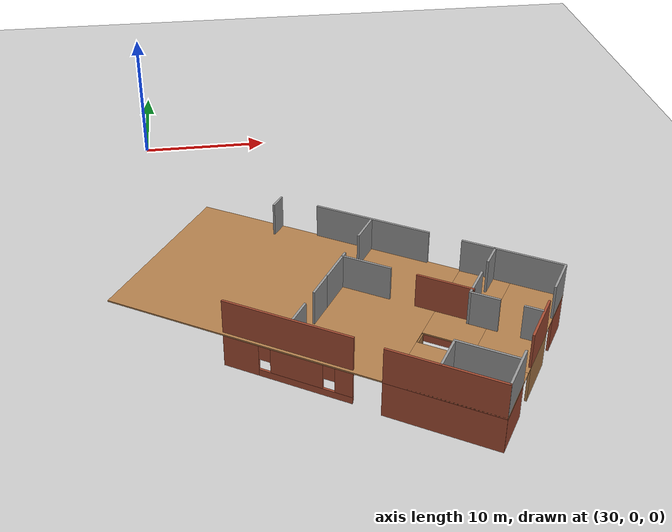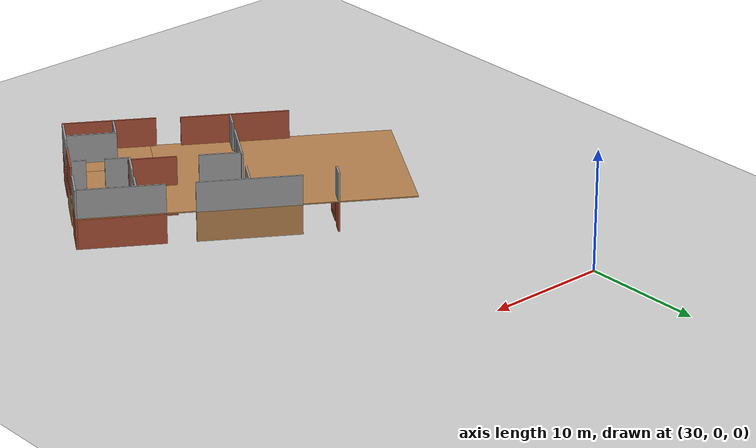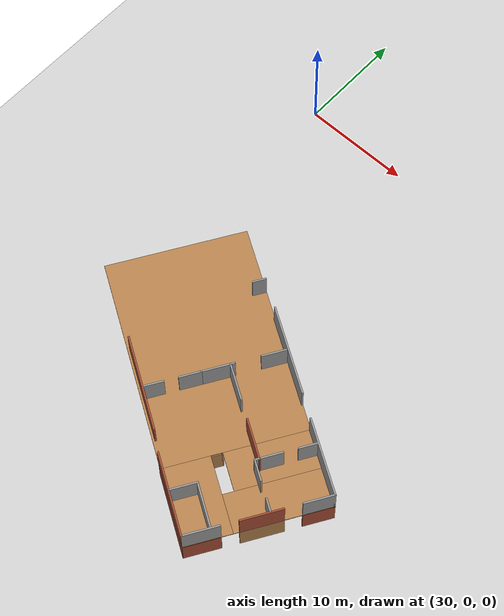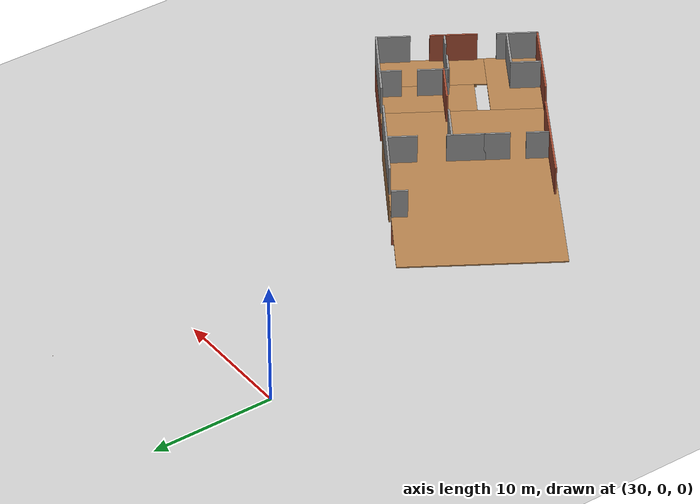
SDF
<sdf version="1.7">
 <world name="default">
  <model name="ground_plane">
   <static>1</static>
   <link name="link">
    <collision name="collision">
     <geometry><plane><normal>0 0 1</normal><size>100 100</size></plane></geometry>
     <surface><friction><ode><mu>100</mu><mu2>50</mu2></ode></friction></surface>
    </collision>
    <visual name="visual">
     <cast_shadows>0</cast_shadows>
     <geometry><plane><normal>0 0 1</normal><size>100 100</size></plane></geometry>
     <material>
      <script><uri>file://media/materials/scripts/gazebo.material</uri><name>Gazebo/Grey</name></script>
     </material>
    </visual>
   </link>
  </model>
  <model name="new_world">
   <pose>22.5456 -21.389 0 0 0 -0.55945</pose>
   <link name="Floor_3">
    <pose>19.9287 5.96658 2.5 0 -0 0</pose>
    <visual name="Floor_3_Visual_0">
     <pose>-3.49208 0 0.05 0 -0 0</pose>
     <geometry><box><size>19.5667 12.7728 0.1</size></box></geometry>
     <material>
      <script><uri>file://media/materials/scripts/gazebo.material</uri><name>Gazebo/Wood</name></script>
      <ambient>1 1 1 1</ambient>
     </material>
     <meta><layer>1</layer></meta>
    </visual>
    <collision name="Floor_3_Collision_0">
     <geometry><box><size>19.5667 12.7728 0.1</size></box></geometry>
     <pose>-3.49208 0 0.05 0 -0 0</pose>
    </collision>
    <visual name="Floor_3_Visual_1">
     <pose>9.78335 -4.25673 0.05 0 -0 0</pose>
     <geometry><box><size>6.98416 4.25935 0.1</size></box></geometry>
     <material>
      <script><uri>file://media/materials/scripts/gazebo.material</uri><name>Gazebo/Wood</name></script>
      <ambient>1 1 1 1</ambient>
     </material>
     <meta><layer>1</layer></meta>
    </visual>
    <collision name="Floor_3_Collision_1">
     <geometry><box><size>6.98416 4.25935 0.1</size></box></geometry>
     <pose>9.78335 -4.25673 0.05 0 -0 0</pose>
    </collision>
    <visual name="Floor_3_Visual_2">
     <pose>11.5333 2.12967 0.05 0 -0 0</pose>
     <geometry><box><size>3.48416 8.51345 0.1</size></box></geometry>
     <material>
      <script><uri>file://media/materials/scripts/gazebo.material</uri><name>Gazebo/Wood</name></script>
      <ambient>1 1 1 1</ambient>
     </material>
     <meta><layer>1</layer></meta>
    </visual>
    <collision name="Floor_3_Collision_2">
     <geometry><box><size>3.48416 8.51345 0.1</size></box></geometry>
     <pose>11.5333 2.12967 0.05 0 -0 0</pose>
    </collision>
    <visual name="Floor_3_Visual_3">
     <pose>8.04127 2.62967 0.05 0 -0 0</pose>
     <geometry><box><size>3.5 7.51345 0.1</size></box></geometry>
     <material>
      <script><uri>file://media/materials/scripts/gazebo.material</uri><name>Gazebo/Wood</name></script>
      <ambient>1 1 1 1</ambient>
     </material>
     <meta><layer>1</layer></meta>
    </visual>
    <collision name="Floor_3_Collision_3">
     <geometry><box><size>3.5 7.51345 0.1</size></box></geometry>
     <pose>8.04127 2.62967 0.05 0 -0 0</pose>
    </collision>
   </link>
   <link name="Wall_167">
    <collision name="Wall_167_Collision">
     <geometry><box><size>7.5 0.15 2.5</size></box></geometry>
     <pose>0 0 1.25 0 -0 0</pose>
    </collision>
    <visual name="Wall_167_Visual">
     <pose>0 0 1.25 0 -0 0</pose>
     <geometry><box><size>7.5 0.15 2.5</size></box></geometry>
     <material>
      <script><uri>file://media/materials/scripts/gazebo.material</uri><name>Gazebo/Bricks</name></script>
      <ambient>1 1 1 1</ambient>
     </material>
     <meta><layer>1</layer></meta>
    </visual>
    <pose>29.4319 -0.344823 2.5 0 -0 0</pose>
   </link>
   <link name="Wall_168">
    <collision name="Wall_168_Collision">
     <geometry><box><size>2.75 0.15 2.5</size></box></geometry>
     <pose>0 0 1.25 0 -0 0</pose>
    </collision>
    <visual name="Wall_168_Visual">
     <pose>0 0 1.25 0 -0 0</pose>
     <geometry><box><size>2.75 0.15 2.5</size></box></geometry>
     <material>
      <script><uri>file://media/materials/scripts/gazebo.material</uri><name>Gazebo/Grey</name></script>
      <ambient>1 1 1 1</ambient>
     </material>
     <meta><layer>1</layer></meta>
    </visual>
    <pose>33.1201 10.972 2.5 0 -0 -1.5708</pose>
   </link>
   <link name="Wall_169">
    <collision name="Wall_169_Collision">
     <geometry><box><size>3.75 0.15 2.5</size></box></geometry>
     <pose>0 0 1.25 0 -0 0</pose>
    </collision>
    <visual name="Wall_169_Visual">
     <pose>0 0 1.25 0 -0 0</pose>
     <geometry><box><size>3.75 0.15 2.5</size></box></geometry>
     <material>
      <script><uri>file://media/materials/scripts/gazebo.material</uri><name>Gazebo/Bricks</name></script>
      <ambient>1 1 1 1</ambient>
     </material>
     <meta><layer>1</layer></meta>
    </visual>
    <pose>33.1291 6.22555 2.5 0 -0 -1.5708</pose>
   </link>
   <link name="Wall_170">
    <collision name="Wall_170_Collision">
     <geometry><box><size>3.25 0.15 2.5</size></box></geometry>
     <pose>0 0 1.25 0 -0 0</pose>
    </collision>
    <visual name="Wall_170_Visual">
     <pose>0 0 1.25 0 -0 0</pose>
     <geometry><box><size>3.25 0.15 2.5</size></box></geometry>
     <material>
      <script><uri>file://media/materials/scripts/gazebo.material</uri><name>Gazebo/Grey</name></script>
      <ambient>1 1 1 1</ambient>
     </material>
     <meta><layer>1</layer></meta>
    </visual>
    <pose>33.1091 1.23835 2.5 0 -0 -1.5708</pose>
   </link>
   <link name="Wall_174">
    <collision name="Wall_174_Collision">
     <geometry><box><size>8.25 0.15 2.5</size></box></geometry>
     <pose>0 0 1.25 0 -0 0</pose>
    </collision>
    <visual name="Wall_174_Visual">
     <pose>0 0 1.25 0 -0 0</pose>
     <geometry><box><size>8.25 0.15 2.5</size></box></geometry>
     <material>
      <script><uri>file://media/materials/scripts/gazebo.material</uri><name>Gazebo/Grey</name></script>
      <ambient>1 1 1 1</ambient>
     </material>
     <meta><layer>1</layer></meta>
    </visual>
    <pose>19.8006 12.278 2.5 0 -0 0</pose>
   </link>
   <link name="Wall_175">
    <collision name="Wall_175_Collision">
     <geometry><box><size>7 0.15 2.5</size></box></geometry>
     <pose>0 0 1.25 0 -0 0</pose>
    </collision>
    <visual name="Wall_175_Visual">
     <pose>0 0 1.25 0 -0 0</pose>
     <geometry><box><size>7 0.15 2.5</size></box></geometry>
     <material>
      <script><uri>file://media/materials/scripts/gazebo.material</uri><name>Gazebo/Grey</name></script>
      <ambient>1 1 1 1</ambient>
     </material>
     <meta><layer>1</layer></meta>
    </visual>
    <pose>29.6951 12.272 2.5 0 -0 3.14159</pose>
   </link>
   <link name="Wall_177">
    <collision name="Wall_177_Collision">
     <geometry><box><size>8.75 0.15 2.5</size></box></geometry>
     <pose>0 0 1.25 0 -0 0</pose>
    </collision>
    <visual name="Wall_177_Visual">
     <pose>0 0 1.25 0 -0 0</pose>
     <geometry><box><size>8.75 0.15 2.5</size></box></geometry>
     <material>
      <script><uri>file://media/materials/scripts/gazebo.material</uri><name>Gazebo/Bricks</name></script>
      <ambient>1 1 1 1</ambient>
     </material>
     <meta><layer>1</layer></meta>
    </visual>
    <pose>19.3774 -0.149946 2.5 0 -0 0</pose>
   </link>
   <link name="Wall_180">
    <collision name="Wall_180_Collision">
     <geometry><box><size>1.25 0.15 2.5</size></box></geometry>
     <pose>0 0 1.25 0 -0 0</pose>
    </collision>
    <visual name="Wall_180_Visual">
     <pose>0 0 1.25 0 -0 0</pose>
     <geometry><box><size>1.25 0.15 2.5</size></box></geometry>
     <material>
      <script><uri>file://media/materials/scripts/gazebo.material</uri><name>Gazebo/Grey</name></script>
      <ambient>1 1 1 1</ambient>
     </material>
     <meta><layer>1</layer></meta>
    </visual>
    <pose>12.8701 11.722 2.5 0 -0 1.5708</pose>
   </link>
   <link name="Wall_183">
    <collision name="Wall_183_Collision">
     <geometry><box><size>3 0.15 2.5</size></box></geometry>
     <pose>0 0 1.25 0 -0 0</pose>
    </collision>
    <visual name="Wall_183_Visual">
     <pose>0 0 1.25 0 -0 0</pose>
     <geometry><box><size>3 0.15 2.5</size></box></geometry>
     <material>
      <script><uri>file://media/materials/scripts/gazebo.material</uri><name>Gazebo/Grey</name></script>
      <ambient>1 1 1 1</ambient>
     </material>
     <meta><layer>1</layer></meta>
    </visual>
    <pose>19.7634 6.23037 2.5 0 -0 1.5708</pose>
   </link>
   <link name="Wall_184">
    <collision name="Wall_184_Collision">
     <geometry><box><size>2.25 0.15 2.5</size></box></geometry>
     <pose>0 0 1.25 0 -0 0</pose>
    </collision>
    <visual name="Wall_184_Visual">
     <pose>0 0 1.25 0 -0 0</pose>
     <geometry><box><size>2.25 0.15 2.5</size></box></geometry>
     <material>
      <script><uri>file://media/materials/scripts/gazebo.material</uri><name>Gazebo/Grey</name></script>
      <ambient>1 1 1 1</ambient>
     </material>
     <meta><layer>1</layer></meta>
    </visual>
    <pose>19.7634 11.0554 2.5 0 -0 1.5708</pose>
   </link>
   <link name="Wall_187">
    <collision name="Wall_187_Collision">
     <geometry><box><size>2 0.15 2.5</size></box></geometry>
     <pose>0 0 1.25 0 -0 0</pose>
    </collision>
    <visual name="Wall_187_Visual">
     <pose>0 0 1.25 0 -0 0</pose>
     <geometry><box><size>2 0.15 2.5</size></box></geometry>
     <material>
      <script><uri>file://media/materials/scripts/gazebo.material</uri><name>Gazebo/Grey</name></script>
      <ambient>1 1 1 1</ambient>
     </material>
     <meta><layer>1</layer></meta>
    </visual>
    <pose>19.7634 3.88037 2.5 0 -0 -1.5708</pose>
   </link>
   <link name="Wall_188">
    <collision name="Wall_188_Collision">
     <geometry><box><size>1.75 0.15 2.5</size></box></geometry>
     <pose>0 0 1.25 0 -0 0</pose>
    </collision>
    <visual name="Wall_188_Visual">
     <pose>0 0 1.25 0 -0 0</pose>
     <geometry><box><size>1.75 0.15 2.5</size></box></geometry>
     <material>
      <script><uri>file://media/materials/scripts/gazebo.material</uri><name>Gazebo/Grey</name></script>
      <ambient>1 1 1 1</ambient>
     </material>
     <meta><layer>1</layer></meta>
    </visual>
    <pose>19.7634 0.805366 2.5 0 -0 -1.5708</pose>
   </link>
   <link name="Wall_189">
    <collision name="Wall_189_Collision">
     <geometry><box><size>1.75 0.15 2.5</size></box></geometry>
     <pose>0 0 1.25 0 -0 0</pose>
    </collision>
    <visual name="Wall_189_Visual">
     <pose>0 0 1.25 0 -0 0</pose>
     <geometry><box><size>1.75 0.15 2.5</size></box></geometry>
     <material>
      <script><uri>file://media/materials/scripts/gazebo.material</uri><name>Gazebo/Grey</name></script>
      <ambient>1 1 1 1</ambient>
     </material>
     <meta><layer>1</layer></meta>
    </visual>
    <pose>28.489 11.4409 2.5 0 -0 -1.5708</pose>
   </link>
   <link name="Wall_19">
    <collision name="Wall_19_Collision">
     <geometry><box><size>7.5 0.15 2.5</size></box></geometry>
     <pose>0 0 1.25 0 -0 0</pose>
    </collision>
    <visual name="Wall_19_Visual">
     <pose>0 0 1.25 0 -0 0</pose>
     <geometry><box><size>7.5 0.15 2.5</size></box></geometry>
     <material>
      <script><uri>file://media/materials/scripts/gazebo.material</uri><name>Gazebo/Bricks</name></script>
      <ambient>1 1 1 1</ambient>
     </material>
     <meta><layer>0</layer></meta>
    </visual>
    <pose>29.4316 -0.345181 0 0 -0 0</pose>
   </link>
   <link name="Wall_190">
    <collision name="Wall_190_Collision">
     <geometry><box><size>2.5 0.15 2.5</size></box></geometry>
     <pose>0 0 1.25 0 -0 0</pose>
    </collision>
    <visual name="Wall_190_Visual">
     <pose>0 0 1.25 0 -0 0</pose>
     <geometry><box><size>2.5 0.15 2.5</size></box></geometry>
     <material>
      <script><uri>file://media/materials/scripts/gazebo.material</uri><name>Gazebo/Grey</name></script>
      <ambient>1 1 1 1</ambient>
     </material>
     <meta><layer>1</layer></meta>
    </visual>
    <pose>28.489 8.11594 2.5 0 -0 -1.5708</pose>
   </link>
   <link name="Wall_191">
    <collision name="Wall_191_Collision">
     <geometry><box><size>2 0.15 2.5</size></box></geometry>
     <pose>0 0 1.25 0 -0 0</pose>
    </collision>
    <visual name="Wall_191_Visual">
     <pose>0 0 1.25 0 -0 0</pose>
     <geometry><box><size>2 0.15 2.5</size></box></geometry>
     <material>
      <script><uri>file://media/materials/scripts/gazebo.material</uri><name>Gazebo/Grey</name></script>
      <ambient>1 1 1 1</ambient>
     </material>
     <meta><layer>1</layer></meta>
    </visual>
    <pose>29.414 6.94094 2.5 0 -0 0</pose>
   </link>
   <link name="Wall_192">
    <collision name="Wall_192_Collision">
     <geometry><box><size>1.25 0.15 2.5</size></box></geometry>
     <pose>0 0 1.25 0 -0 0</pose>
    </collision>
    <visual name="Wall_192_Visual">
     <pose>0 0 1.25 0 -0 0</pose>
     <geometry><box><size>1.25 0.15 2.5</size></box></geometry>
     <material>
      <script><uri>file://media/materials/scripts/gazebo.material</uri><name>Gazebo/Grey</name></script>
      <ambient>1 1 1 1</ambient>
     </material>
     <meta><layer>1</layer></meta>
    </visual>
    <pose>32.489 6.94094 2.5 0 -0 0</pose>
   </link>
   <link name="Wall_193">
    <collision name="Wall_193_Collision">
     <geometry><box><size>3.4468 0.15 2.5</size></box></geometry>
     <pose>0 0 1.25 0 -0 0</pose>
    </collision>
    <visual name="Wall_193_Visual">
     <pose>0 0 1.25 0 -0 0</pose>
     <geometry><box><size>3.4468 0.15 2.5</size></box></geometry>
     <material>
      <script><uri>file://media/materials/scripts/gazebo.material</uri><name>Gazebo/Grey</name></script>
      <ambient>1 1 1 1</ambient>
     </material>
     <meta><layer>1</layer></meta>
    </visual>
    <pose>21.4125 7.3199 2.5 0 -0 0</pose>
   </link>
   <link name="Wall_194">
    <collision name="Wall_194_Collision">
     <geometry><box><size>3.8032 0.15 2.5</size></box></geometry>
     <pose>0 0 1.25 0 -0 0</pose>
    </collision>
    <visual name="Wall_194_Visual">
     <pose>0 0 1.25 0 -0 0</pose>
     <geometry><box><size>3.8032 0.15 2.5</size></box></geometry>
     <material>
      <script><uri>file://media/materials/scripts/gazebo.material</uri><name>Gazebo/Bricks</name></script>
      <ambient>1 1 1 1</ambient>
     </material>
     <meta><layer>1</layer></meta>
    </visual>
    <pose>26.7375 7.3199 2.5 0 -0 0</pose>
   </link>
   <link name="Wall_199">
    <collision name="Wall_199_Collision">
     <geometry><box><size>4 0.15 2.5</size></box></geometry>
     <pose>0 0 1.25 0 -0 0</pose>
    </collision>
    <visual name="Wall_199_Visual">
     <pose>0 0 1.25 0 -0 0</pose>
     <geometry><box><size>4 0.15 2.5</size></box></geometry>
     <material>
      <script><uri>file://media/materials/scripts/gazebo.material</uri><name>Gazebo/Grey</name></script>
      <ambient>1 1 1 1</ambient>
     </material>
     <meta><layer>1</layer></meta>
    </visual>
    <pose>31.0314 2.04433 2.5 0 -0 0</pose>
   </link>
   <link name="Wall_200">
    <collision name="Wall_200_Collision">
     <geometry><box><size>2.5 0.15 2.5</size></box></geometry>
     <pose>0 0 1.25 0 -0 0</pose>
    </collision>
    <visual name="Wall_200_Visual">
     <pose>0 0 1.25 0 -0 0</pose>
     <geometry><box><size>2.5 0.15 2.5</size></box></geometry>
     <material>
      <script><uri>file://media/materials/scripts/gazebo.material</uri><name>Gazebo/Grey</name></script>
      <ambient>1 1 1 1</ambient>
     </material>
     <meta><layer>1</layer></meta>
    </visual>
    <pose>29.1064 0.869326 2.5 0 -0 -1.5708</pose>
   </link>
   <link name="Wall_21">
    <collision name="Wall_21_Collision">
     <geometry><box><size>2.75 0.15 2.5</size></box></geometry>
     <pose>0 0 1.25 0 -0 0</pose>
    </collision>
    <visual name="Wall_21_Visual">
     <pose>0 0 1.25 0 -0 0</pose>
     <geometry><box><size>2.75 0.15 2.5</size></box></geometry>
     <material>
      <script><uri>file://media/materials/scripts/gazebo.material</uri><name>Gazebo/Bricks</name></script>
      <ambient>1 1 1 1</ambient>
     </material>
     <meta><layer>0</layer></meta>
    </visual>
    <pose>33.1201 10.972 0 0 -0 -1.5708</pose>
   </link>
   <link name="Wall_24">
    <collision name="Wall_24_Collision">
     <geometry><box><size>3.75 0.15 2.5</size></box></geometry>
     <pose>0 0 1.25 0 -0 0</pose>
    </collision>
    <visual name="Wall_24_Visual">
     <pose>0 0 1.25 0 -0 0</pose>
     <geometry><box><size>3.75 0.15 2.5</size></box></geometry>
     <material>
      <script><uri>file://media/materials/scripts/gazebo.material</uri><name>Gazebo/Wood</name></script>
      <ambient>1 1 1 1</ambient>
     </material>
     <meta><layer>0</layer></meta>
    </visual>
    <pose>33.1296 6.22582 0 0 -0 -1.5708</pose>
   </link>
   <link name="Wall_26">
    <collision name="Wall_26_Collision">
     <geometry><box><size>3.25 0.15 2.5</size></box></geometry>
     <pose>0 0 1.25 0 -0 0</pose>
    </collision>
    <visual name="Wall_26_Visual">
     <pose>0 0 1.25 0 -0 0</pose>
     <geometry><box><size>3.25 0.15 2.5</size></box></geometry>
     <material>
      <script><uri>file://media/materials/scripts/gazebo.material</uri><name>Gazebo/Bricks</name></script>
      <ambient>1 1 1 1</ambient>
     </material>
     <meta><layer>0</layer></meta>
    </visual>
    <pose>33.1096 1.23882 0 0 -0 -1.5708</pose>
   </link>
   <link name="Wall_34">
    <collision name="Wall_34_Collision">
     <geometry><box><size>8.25 0.15 2.5</size></box></geometry>
     <pose>0 0 1.25 0 -0 0</pose>
    </collision>
    <visual name="Wall_34_Visual">
     <pose>0 0 1.25 0 -0 0</pose>
     <geometry><box><size>8.25 0.15 2.5</size></box></geometry>
     <material>
      <script><uri>file://media/materials/scripts/gazebo.material</uri><name>Gazebo/Wood</name></script>
      <ambient>1 1 1 1</ambient>
     </material>
     <meta><layer>0</layer></meta>
    </visual>
    <pose>19.8006 12.278 0 0 -0 0</pose>
   </link>
   <link name="Wall_40">
    <collision name="Wall_40_Collision">
     <geometry><box><size>7 0.15 2.5</size></box></geometry>
     <pose>0 0 1.25 0 -0 0</pose>
    </collision>
    <visual name="Wall_40_Visual">
     <pose>0 0 1.25 0 -0 0</pose>
     <geometry><box><size>7 0.15 2.5</size></box></geometry>
     <material>
      <script><uri>file://media/materials/scripts/gazebo.material</uri><name>Gazebo/Bricks</name></script>
      <ambient>1 1 1 1</ambient>
     </material>
     <meta><layer>0</layer></meta>
    </visual>
    <pose>29.6951 12.272 0 0 -0 3.14159</pose>
   </link>
   <link name="Wall_47">
    <pose>19.3776 -0.150181 0 0 -0 0</pose>
    <visual name="Wall_47_Visual_0">
     <pose>-3.14544 0 1.25 0 -0 0</pose>
     <geometry><box><size>2.45912 0.15 2.5</size></box></geometry>
     <material>
      <script><uri>file://media/materials/scripts/gazebo.material</uri><name>Gazebo/Bricks</name></script>
      <ambient>1 1 1 1</ambient>
     </material>
     <meta><layer>0</layer></meta>
    </visual>
    <collision name="Wall_47_Collision_0">
     <geometry><box><size>2.45912 0.15 2.5</size></box></geometry>
     <pose>-3.14544 0 1.25 0 -0 0</pose>
    </collision>
    <visual name="Wall_47_Visual_1">
     <pose>1.22956 0 0.25 0 -0 0</pose>
     <geometry><box><size>6.29087 0.15 0.5</size></box></geometry>
     <material>
      <script><uri>file://media/materials/scripts/gazebo.material</uri><name>Gazebo/Bricks</name></script>
      <ambient>1 1 1 1</ambient>
     </material>
     <meta><layer>0</layer></meta>
    </visual>
    <collision name="Wall_47_Collision_1">
     <geometry><box><size>6.29087 0.15 0.5</size></box></geometry>
     <pose>1.22956 0 0.25 0 -0 0</pose>
    </collision>
    <visual name="Wall_47_Visual_2">
     <pose>0.646334 0 1.5 0 -0 0</pose>
     <geometry><box><size>3.52442 0.15 2</size></box></geometry>
     <material>
      <script><uri>file://media/materials/scripts/gazebo.material</uri><name>Gazebo/Bricks</name></script>
      <ambient>1 1 1 1</ambient>
     </material>
     <meta><layer>0</layer></meta>
    </visual>
    <collision name="Wall_47_Collision_2">
     <geometry><box><size>3.52442 0.15 2</size></box></geometry>
     <pose>0.646334 0 1.5 0 -0 0</pose>
    </collision>
    <visual name="Wall_47_Visual_3">
     <pose>3.79177 0 1.5 0 -0 0</pose>
     <geometry><box><size>1.16646 0.15 2</size></box></geometry>
     <material>
      <script><uri>file://media/materials/scripts/gazebo.material</uri><name>Gazebo/Bricks</name></script>
      <ambient>1 1 1 1</ambient>
     </material>
     <meta><layer>0</layer></meta>
    </visual>
    <collision name="Wall_47_Collision_3">
     <geometry><box><size>1.16646 0.15 2</size></box></geometry>
     <pose>3.79177 0 1.5 0 -0 0</pose>
    </collision>
    <visual name="Wall_47_Visual_4">
     <pose>-1.51588 0 1.9 0 -0 0</pose>
     <geometry><box><size>0.8 0.15 1.2</size></box></geometry>
     <material>
      <script><uri>file://media/materials/scripts/gazebo.material</uri><name>Gazebo/Bricks</name></script>
      <ambient>1 1 1 1</ambient>
     </material>
     <meta><layer>0</layer></meta>
    </visual>
    <collision name="Wall_47_Collision_4">
     <geometry><box><size>0.8 0.15 1.2</size></box></geometry>
     <pose>-1.51588 0 1.9 0 -0 0</pose>
    </collision>
    <visual name="Wall_47_Visual_5">
     <pose>2.80854 0 1.9 0 -0 0</pose>
     <geometry><box><size>0.8 0.15 1.2</size></box></geometry>
     <material>
      <script><uri>file://media/materials/scripts/gazebo.material</uri><name>Gazebo/Bricks</name></script>
      <ambient>1 1 1 1</ambient>
     </material>
     <meta><layer>0</layer></meta>
    </visual>
    <collision name="Wall_47_Collision_5">
     <geometry><box><size>0.8 0.15 1.2</size></box></geometry>
     <pose>2.80854 0 1.9 0 -0 0</pose>
    </collision>
   </link>
   <link name="Wall_53">
    <pose>12.8315 9.36573 0 0 -0 1.5708</pose>
    <visual name="Wall_53_Visual_0">
     <pose>-0.776787 0 1.25 0 -0 0</pose>
     <geometry><box><size>0.446426 0.15 2.5</size></box></geometry>
     <material>
      <script><uri>file://media/materials/scripts/gazebo.material</uri><name>Gazebo/Bricks</name></script>
      <ambient>1 1 1 1</ambient>
     </material>
     <meta><layer>0</layer></meta>
    </visual>
    <collision name="Wall_53_Collision_0">
     <geometry><box><size>0.446426 0.15 2.5</size></box></geometry>
     <pose>-0.776787 0 1.25 0 -0 0</pose>
    </collision>
    <visual name="Wall_53_Visual_1">
     <pose>0.223213 0 0.25 0 -0 0</pose>
     <geometry><box><size>1.55357 0.15 0.5</size></box></geometry>
     <material>
      <script><uri>file://media/materials/scripts/gazebo.material</uri><name>Gazebo/Bricks</name></script>
      <ambient>1 1 1 1</ambient>
     </material>
     <meta><layer>0</layer></meta>
    </visual>
    <collision name="Wall_53_Collision_1">
     <geometry><box><size>1.55357 0.15 0.5</size></box></geometry>
     <pose>0.223213 0 0.25 0 -0 0</pose>
    </collision>
    <visual name="Wall_53_Visual_2">
     <pose>0.623213 0 1.5 0 -0 0</pose>
     <geometry><box><size>0.753574 0.15 2</size></box></geometry>
     <material>
      <script><uri>file://media/materials/scripts/gazebo.material</uri><name>Gazebo/Bricks</name></script>
      <ambient>1 1 1 1</ambient>
     </material>
     <meta><layer>0</layer></meta>
    </visual>
    <collision name="Wall_53_Collision_2">
     <geometry><box><size>0.753574 0.15 2</size></box></geometry>
     <pose>0.623213 0 1.5 0 -0 0</pose>
    </collision>
    <visual name="Wall_53_Visual_3">
     <pose>-0.153574 0 1.9 0 -0 0</pose>
     <geometry><box><size>0.8 0.15 1.2</size></box></geometry>
     <material>
      <script><uri>file://media/materials/scripts/gazebo.material</uri><name>Gazebo/Bricks</name></script>
      <ambient>1 1 1 1</ambient>
     </material>
     <meta><layer>0</layer></meta>
    </visual>
    <collision name="Wall_53_Collision_3">
     <geometry><box><size>0.8 0.15 1.2</size></box></geometry>
     <pose>-0.153574 0 1.9 0 -0 0</pose>
    </collision>
   </link>
   <link name="Wall_55">
    <collision name="Wall_55_Collision">
     <geometry><box><size>1.25 0.15 2.5</size></box></geometry>
     <pose>0 0 1.25 0 -0 0</pose>
    </collision>
    <visual name="Wall_55_Visual">
     <pose>0 0 1.25 0 -0 0</pose>
     <geometry><box><size>1.25 0.15 2.5</size></box></geometry>
     <material>
      <script><uri>file://media/materials/scripts/gazebo.material</uri><name>Gazebo/Bricks</name></script>
      <ambient>1 1 1 1</ambient>
     </material>
     <meta><layer>0</layer></meta>
    </visual>
    <pose>12.8701 11.722 0 0 -0 1.5708</pose>
   </link>
   <link name="Wall_61">
    <collision name="Wall_61_Collision">
     <geometry><box><size>3 0.15 2.5</size></box></geometry>
     <pose>0 0 1.25 0 -0 0</pose>
    </collision>
    <visual name="Wall_61_Visual">
     <pose>0 0 1.25 0 -0 0</pose>
     <geometry><box><size>3 0.15 2.5</size></box></geometry>
     <material>
      <script><uri>file://media/materials/scripts/gazebo.material</uri><name>Gazebo/Wood</name></script>
      <ambient>1 1 1 1</ambient>
     </material>
     <meta><layer>0</layer></meta>
    </visual>
    <pose>19.7635 6.23059 0 0 -0 1.57088</pose>
   </link>
   <link name="Wall_63">
    <pose>19.7634 11.0554 0 0 -0 1.5708</pose>
    <visual name="Wall_63_Visual_0">
     <pose>-0.791187 0 1.25 0 -0 0</pose>
     <geometry><box><size>0.667626 0.15 2.5</size></box></geometry>
     <material>
      <script><uri>file://media/materials/scripts/gazebo.material</uri><name>Gazebo/Wood</name></script>
      <ambient>1 1 1 1</ambient>
     </material>
     <meta><layer>0</layer></meta>
    </visual>
    <collision name="Wall_63_Collision_0">
     <geometry><box><size>0.667626 0.15 2.5</size></box></geometry>
     <pose>-0.791187 0 1.25 0 -0 0</pose>
    </collision>
    <visual name="Wall_63_Visual_1">
     <pose>0.333813 0 0.25 0 -0 0</pose>
     <geometry><box><size>1.58237 0.15 0.5</size></box></geometry>
     <material>
      <script><uri>file://media/materials/scripts/gazebo.material</uri><name>Gazebo/Wood</name></script>
      <ambient>1 1 1 1</ambient>
     </material>
     <meta><layer>0</layer></meta>
    </visual>
    <collision name="Wall_63_Collision_1">
     <geometry><box><size>1.58237 0.15 0.5</size></box></geometry>
     <pose>0.333813 0 0.25 0 -0 0</pose>
    </collision>
    <visual name="Wall_63_Visual_2">
     <pose>0.733813 0 1.5 0 -0 0</pose>
     <geometry><box><size>0.782374 0.15 2</size></box></geometry>
     <material>
      <script><uri>file://media/materials/scripts/gazebo.material</uri><name>Gazebo/Wood</name></script>
      <ambient>1 1 1 1</ambient>
     </material>
     <meta><layer>0</layer></meta>
    </visual>
    <collision name="Wall_63_Collision_2">
     <geometry><box><size>0.782374 0.15 2</size></box></geometry>
     <pose>0.733813 0 1.5 0 -0 0</pose>
    </collision>
    <visual name="Wall_63_Visual_3">
     <pose>-0.057374 0 1.9 0 -0 0</pose>
     <geometry><box><size>0.8 0.15 1.2</size></box></geometry>
     <material>
      <script><uri>file://media/materials/scripts/gazebo.material</uri><name>Gazebo/Wood</name></script>
      <ambient>1 1 1 1</ambient>
     </material>
     <meta><layer>0</layer></meta>
    </visual>
    <collision name="Wall_63_Collision_3">
     <geometry><box><size>0.8 0.15 1.2</size></box></geometry>
     <pose>-0.057374 0 1.9 0 -0 0</pose>
    </collision>
   </link>
   <link name="Wall_70">
    <collision name="Wall_70_Collision">
     <geometry><box><size>2 0.15 2.5</size></box></geometry>
     <pose>0 0 1.25 0 -0 0</pose>
    </collision>
    <visual name="Wall_70_Visual">
     <pose>0 0 1.25 0 -0 0</pose>
     <geometry><box><size>2 0.15 2.5</size></box></geometry>
     <material>
      <script><uri>file://media/materials/scripts/gazebo.material</uri><name>Gazebo/Wood</name></script>
      <ambient>1 1 1 1</ambient>
     </material>
     <meta><layer>0</layer></meta>
    </visual>
    <pose>19.7635 3.88059 0 0 -0 -1.57092</pose>
   </link>
   <link name="Wall_72">
    <collision name="Wall_72_Collision">
     <geometry><box><size>1.75 0.15 2.5</size></box></geometry>
     <pose>0 0 1.25 0 -0 0</pose>
    </collision>
    <visual name="Wall_72_Visual">
     <pose>0 0 1.25 0 -0 0</pose>
     <geometry><box><size>1.75 0.15 2.5</size></box></geometry>
     <material>
      <script><uri>file://media/materials/scripts/gazebo.material</uri><name>Gazebo/Bricks</name></script>
      <ambient>1 1 1 1</ambient>
     </material>
     <meta><layer>0</layer></meta>
    </visual>
    <pose>19.7636 0.805819 0 0 -0 -1.5708</pose>
   </link>
   <link name="Wall_74">
    <collision name="Wall_74_Collision">
     <geometry><box><size>1.75 0.15 2.5</size></box></geometry>
     <pose>0 0 1.25 0 -0 0</pose>
    </collision>
    <visual name="Wall_74_Visual">
     <pose>0 0 1.25 0 -0 0</pose>
     <geometry><box><size>1.75 0.15 2.5</size></box></geometry>
     <material>
      <script><uri>file://media/materials/scripts/gazebo.material</uri><name>Gazebo/Wood</name></script>
      <ambient>1 1 1 1</ambient>
     </material>
     <meta><layer>0</layer></meta>
    </visual>
    <pose>28.489 11.4409 0 0 -0 -1.5708</pose>
   </link>
   <link name="Wall_76">
    <collision name="Wall_76_Collision">
     <geometry><box><size>2.5 0.15 2.5</size></box></geometry>
     <pose>0 0 1.25 0 -0 0</pose>
    </collision>
    <visual name="Wall_76_Visual">
     <pose>0 0 1.25 0 -0 0</pose>
     <geometry><box><size>2.5 0.15 2.5</size></box></geometry>
     <material>
      <script><uri>file://media/materials/scripts/gazebo.material</uri><name>Gazebo/Bricks</name></script>
      <ambient>1 1 1 1</ambient>
     </material>
     <meta><layer>0</layer></meta>
    </visual>
    <pose>28.489 8.11594 0 0 -0 -1.5708</pose>
   </link>
   <link name="Wall_77">
    <collision name="Wall_77_Collision">
     <geometry><box><size>2 0.15 2.5</size></box></geometry>
     <pose>0 0 1.25 0 -0 0</pose>
    </collision>
    <visual name="Wall_77_Visual">
     <pose>0 0 1.25 0 -0 0</pose>
     <geometry><box><size>2 0.15 2.5</size></box></geometry>
     <material>
      <script><uri>file://media/materials/scripts/gazebo.material</uri><name>Gazebo/Wood</name></script>
      <ambient>1 1 1 1</ambient>
     </material>
     <meta><layer>0</layer></meta>
    </visual>
    <pose>29.414 6.94094 0 0 -0 0</pose>
   </link>
   <link name="Wall_79">
    <collision name="Wall_79_Collision">
     <geometry><box><size>1.25 0.15 2.5</size></box></geometry>
     <pose>0 0 1.25 0 -0 0</pose>
    </collision>
    <visual name="Wall_79_Visual">
     <pose>0 0 1.25 0 -0 0</pose>
     <geometry><box><size>1.25 0.15 2.5</size></box></geometry>
     <material>
      <script><uri>file://media/materials/scripts/gazebo.material</uri><name>Gazebo/Wood</name></script>
      <ambient>1 1 1 1</ambient>
     </material>
     <meta><layer>0</layer></meta>
    </visual>
    <pose>32.489 6.94094 0 0 -0 0</pose>
   </link>
   <link name="Wall_83">
    <collision name="Wall_83_Collision">
     <geometry><box><size>3.4468 0.15 2.5</size></box></geometry>
     <pose>0 0 1.25 0 -0 0</pose>
    </collision>
    <visual name="Wall_83_Visual">
     <pose>0 0 1.25 0 -0 0</pose>
     <geometry><box><size>3.4468 0.15 2.5</size></box></geometry>
     <material>
      <script><uri>file://media/materials/scripts/gazebo.material</uri><name>Gazebo/Wood</name></script>
      <ambient>1 1 1 1</ambient>
     </material>
     <meta><layer>0</layer></meta>
    </visual>
    <pose>21.4125 7.3199 0 0 -0 0</pose>
   </link>
   <link name="Wall_85">
    <collision name="Wall_85_Collision">
     <geometry><box><size>3.8032 0.15 2.5</size></box></geometry>
     <pose>0 0 1.25 0 -0 0</pose>
    </collision>
    <visual name="Wall_85_Visual">
     <pose>0 0 1.25 0 -0 0</pose>
     <geometry><box><size>3.8032 0.15 2.5</size></box></geometry>
     <material>
      <script><uri>file://media/materials/scripts/gazebo.material</uri><name>Gazebo/Bricks</name></script>
      <ambient>1 1 1 1</ambient>
     </material>
     <meta><layer>0</layer></meta>
    </visual>
    <pose>26.7375 7.3199 0 0 -0 0</pose>
   </link>
   <link name="Wall_87">
    <collision name="Wall_87_Collision">
     <geometry><box><size>2.5 0.15 2.5</size></box></geometry>
     <pose>0 0 1.25 0 -0 0</pose>
    </collision>
    <visual name="Wall_87_Visual">
     <pose>0 0 1.25 0 -0 0</pose>
     <geometry><box><size>2.5 0.15 2.5</size></box></geometry>
     <material>
      <script><uri>file://media/materials/scripts/gazebo.material</uri><name>Gazebo/Bricks</name></script>
      <ambient>1 1 1 1</ambient>
     </material>
     <meta><layer>0</layer></meta>
    </visual>
    <pose>23.6307 3.65304 0 0 -0 -1.5708</pose>
   </link>
   <link name="Wall_88">
    <pose>24.9307 2.47804 0 0 -0 0</pose>
    <visual name="Wall_88_Visual_0">
     <pose>-0.893527 0 1.25 0 -0 0</pose>
     <geometry><box><size>0.962946 0.15 2.5</size></box></geometry>
     <material>
      <script><uri>file://media/materials/scripts/gazebo.material</uri><name>Gazebo/Wood</name></script>
      <ambient>1 1 1 1</ambient>
     </material>
     <meta><layer>0</layer></meta>
    </visual>
    <collision name="Wall_88_Collision_0">
     <geometry><box><size>0.962946 0.15 2.5</size></box></geometry>
     <pose>-0.893527 0 1.25 0 -0 0</pose>
    </collision>
    <visual name="Wall_88_Visual_1">
     <pose>0.931473 0 1.25 0 -0 0</pose>
     <geometry><box><size>0.887054 0.15 2.5</size></box></geometry>
     <material>
      <script><uri>file://media/materials/scripts/gazebo.material</uri><name>Gazebo/Wood</name></script>
      <ambient>1 1 1 1</ambient>
     </material>
     <meta><layer>0</layer></meta>
    </visual>
    <collision name="Wall_88_Collision_1">
     <geometry><box><size>0.887054 0.15 2.5</size></box></geometry>
     <pose>0.931473 0 1.25 0 -0 0</pose>
    </collision>
    <visual name="Wall_88_Visual_2">
     <pose>0.037946 0 2.25 0 -0 0</pose>
     <geometry><box><size>0.9 0.15 0.5</size></box></geometry>
     <material>
      <script><uri>file://media/materials/scripts/gazebo.material</uri><name>Gazebo/Wood</name></script>
      <ambient>1 1 1 1</ambient>
     </material>
     <meta><layer>0</layer></meta>
    </visual>
    <collision name="Wall_88_Collision_2">
     <geometry><box><size>0.9 0.15 0.5</size></box></geometry>
     <pose>0.037946 0 2.25 0 -0 0</pose>
    </collision>
   </link>
   <link name="Wall_89">
    <collision name="Wall_89_Collision">
     <geometry><box><size>2.5 0.15 2.5</size></box></geometry>
     <pose>0 0 1.25 0 -0 0</pose>
    </collision>
    <visual name="Wall_89_Visual">
     <pose>0 0 1.25 0 -0 0</pose>
     <geometry><box><size>2.5 0.15 2.5</size></box></geometry>
     <material>
      <script><uri>file://media/materials/scripts/gazebo.material</uri><name>Gazebo/Wood</name></script>
      <ambient>1 1 1 1</ambient>
     </material>
     <meta><layer>0</layer></meta>
    </visual>
    <pose>26.2307 3.65304 0 0 -0 1.5708</pose>
   </link>
   <link name="Wall_90">
    <collision name="Wall_90_Collision">
     <geometry><box><size>2.75 0.15 2.5</size></box></geometry>
     <pose>0 0 1.25 0 -0 0</pose>
    </collision>
    <visual name="Wall_90_Visual">
     <pose>0 0 1.25 0 -0 0</pose>
     <geometry><box><size>2.75 0.15 2.5</size></box></geometry>
     <material>
      <script><uri>file://media/materials/scripts/gazebo.material</uri><name>Gazebo/Wood</name></script>
      <ambient>1 1 1 1</ambient>
     </material>
     <meta><layer>0</layer></meta>
    </visual>
    <pose>24.9307 4.82804 0 0 -0 3.14159</pose>
   </link>
   <link name="Wall_92">
    <pose>31.0316 2.04482 0 0 -0 0</pose>
    <visual name="Wall_92_Visual_0">
     <pose>-1.13224 0 1.25 0 -0 0</pose>
     <geometry><box><size>1.73553 0.15 2.5</size></box></geometry>
     <material>
      <script><uri>file://media/materials/scripts/gazebo.material</uri><name>Gazebo/Wood</name></script>
      <ambient>1 1 1 1</ambient>
     </material>
     <meta><layer>0</layer></meta>
    </visual>
    <collision name="Wall_92_Collision_0">
     <geometry><box><size>1.73553 0.15 2.5</size></box></geometry>
     <pose>-1.13224 0 1.25 0 -0 0</pose>
    </collision>
    <visual name="Wall_92_Visual_1">
     <pose>1.31776 0 1.25 0 -0 0</pose>
     <geometry><box><size>1.36447 0.15 2.5</size></box></geometry>
     <material>
      <script><uri>file://media/materials/scripts/gazebo.material</uri><name>Gazebo/Wood</name></script>
      <ambient>1 1 1 1</ambient>
     </material>
     <meta><layer>0</layer></meta>
    </visual>
    <collision name="Wall_92_Collision_1">
     <geometry><box><size>1.36447 0.15 2.5</size></box></geometry>
     <pose>1.31776 0 1.25 0 -0 0</pose>
    </collision>
    <visual name="Wall_92_Visual_2">
     <pose>0.185529 0 2.25 0 -0 0</pose>
     <geometry><box><size>0.9 0.15 0.5</size></box></geometry>
     <material>
      <script><uri>file://media/materials/scripts/gazebo.material</uri><name>Gazebo/Wood</name></script>
      <ambient>1 1 1 1</ambient>
     </material>
     <meta><layer>0</layer></meta>
    </visual>
    <collision name="Wall_92_Collision_2">
     <geometry><box><size>0.9 0.15 0.5</size></box></geometry>
     <pose>0.185529 0 2.25 0 -0 0</pose>
    </collision>
   </link>
   <link name="Wall_94">
    <collision name="Wall_94_Collision">
     <geometry><box><size>2.5 0.15 2.5</size></box></geometry>
     <pose>0 0 1.25 0 -0 0</pose>
    </collision>
    <visual name="Wall_94_Visual">
     <pose>0 0 1.25 0 -0 0</pose>
     <geometry><box><size>2.5 0.15 2.5</size></box></geometry>
     <material>
      <script><uri>file://media/materials/scripts/gazebo.material</uri><name>Gazebo/Wood</name></script>
      <ambient>1 1 1 1</ambient>
     </material>
     <meta><layer>0</layer></meta>
    </visual>
    <pose>29.1066 0.869819 0 0 -0 -1.5708</pose>
   </link>
   <static>1</static>
  </model>
  <model name="wooden_peg">
   <link name="link">
    <pose>0 0 0.04 0 -0 0</pose>
    <inertial>
     <mass>0.0175</mass>
     <inertia>
      <ixx>9.74923e-06</ixx>
      <ixy>0</ixy>
      <ixz>0</ixz>
      <iyy>9.74923e-06</iyy>
      <iyz>0</iyz>
      <izz>8.31797e-07</izz>
     </inertia>
    </inertial>
    <collision name="collision">
     <geometry><cylinder><radius>0.00975</radius><length>0.08</length></cylinder></geometry>
     <surface>
      <contact>
       <poissons_ratio>0.347</poissons_ratio>
       <elastic_modulus>8.8e+09</elastic_modulus>
       <ode><kp>100000</kp><kd>100</kd><max_vel>100</max_vel><min_depth>0.001</min_depth></ode>
      </contact>
      <friction>
       <torsional>
        <coefficient>1</coefficient>
        <use_patch_radius>0</use_patch_radius>
        <surface_radius>0.01</surface_radius>
       </torsional>
      </friction>
     </surface>
    </collision>
    <visual name="visual">
     <geometry><cylinder><radius>0.00975</radius><length>0.08</length></cylinder></geometry>
     <material>
      <script><uri>file://media/materials/scripts/gazebo.material</uri><name>Gazebo/Wood</name></script>
     </material>
    </visual>
   </link>
   <pose>43.2785 10.0901 -0.001 1e-06 -0 0</pose>
  </model>
 </world>
</sdf>
